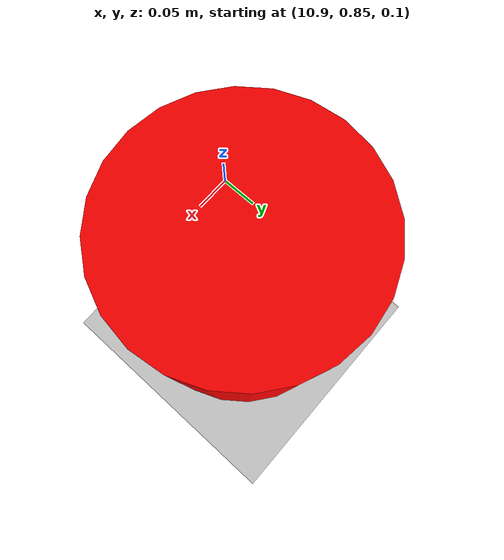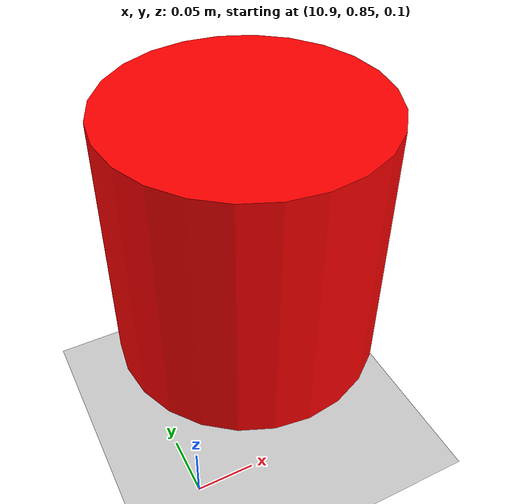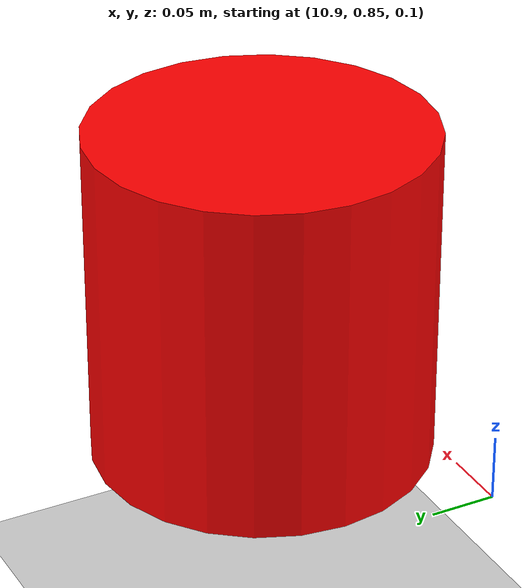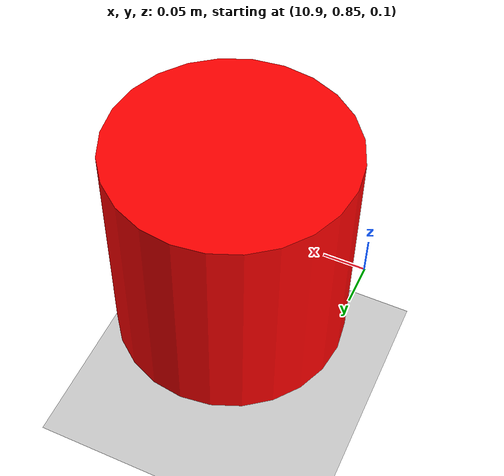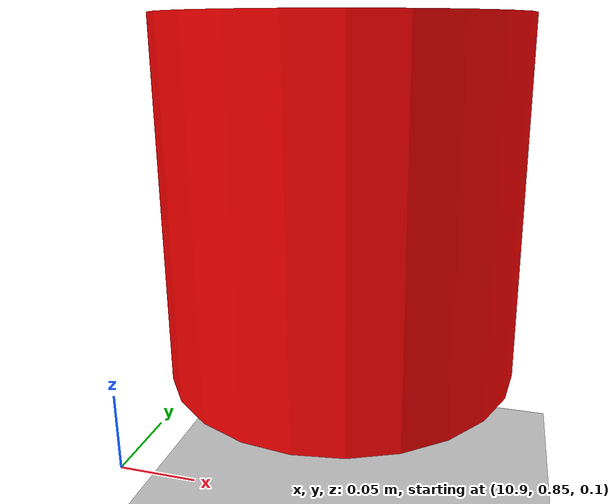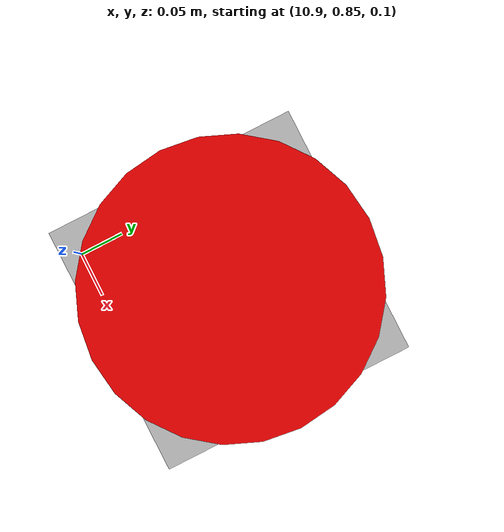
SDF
<?xml version="1.0" ?>
<sdf version="1.5">
  <world name="default">
    <plugin name="gazebo_ros_init" filename="libgazebo_ros_init.so"/>
    <plugin name="gazebo_ros_state" filename="libgazebo_ros_state.so"/>

    <include>
      <uri>model://sun</uri>
    </include>

    <include>
      <uri>model://ground_plane</uri>
    </include>

    <!-- 风力仿真 (轻风 ~1m/s 北偏东, 模拟真实微风环境) -->
    <plugin name='wind_plugin' filename='libgazebo_wind_plugin.so'>
      <frameId>base_link</frameId>
      <robotNamespace/>
      <windVelocityMean>0.8</windVelocityMean>
      <windVelocityMax>1.5</windVelocityMax>
      <windVelocityVariance>0.15</windVelocityVariance>
      <windDirectionMean>1 0.3 0</windDirectionMean>
      <windDirectionVariance>0.1</windDirectionVariance>
      <windGustStart>60</windGustStart>
      <windGustDuration>3</windGustDuration>
      <windGustVelocityMean>2.0</windGustVelocityMean>
      <windGustVelocityMax>3.0</windGustVelocityMax>
      <windGustVelocityVariance>0.3</windGustVelocityVariance>
      <windGustDirectionMean>1 0 0</windGustDirectionMean>
      <windGustDirectionVariance>0.2</windGustDirectionVariance>
      <windPubTopic>world_wind</windPubTopic>
    </plugin>

    <!-- 单桶: NED y≈10 (飞机正前方10m, 纯东方向) -->
    <!-- Gazebo: (11.01, 0.98, 0.25) → NED (0, 10, ~0.58) -->
    <model name="target_bucket">
      <pose>11.01 0.98 0.25 0 0 0</pose>
      <link name="bucket_link">
        <inertial>
          <mass>0.5</mass>
          <inertia>
            <ixx>0.01</ixx><ixy>0</ixy><ixz>0</ixz>
            <iyy>0.01</iyy><iyz>0</iyz>
            <izz>0.01</izz>
          </inertia>
        </inertial>
        <collision name="bucket_collision">
          <geometry>
            <cylinder><radius>0.125</radius><length>0.25</length></cylinder>
          </geometry>
        </collision>
        <visual name="bucket_visual">
          <geometry>
            <cylinder><radius>0.125</radius><length>0.25</length></cylinder>
          </geometry>
          <material>
            <ambient>1 0 0 1</ambient>
            <diffuse>1 0 0 1</diffuse>
          </material>
        </visual>
      </link>
    </model>

  </world>
</sdf>
